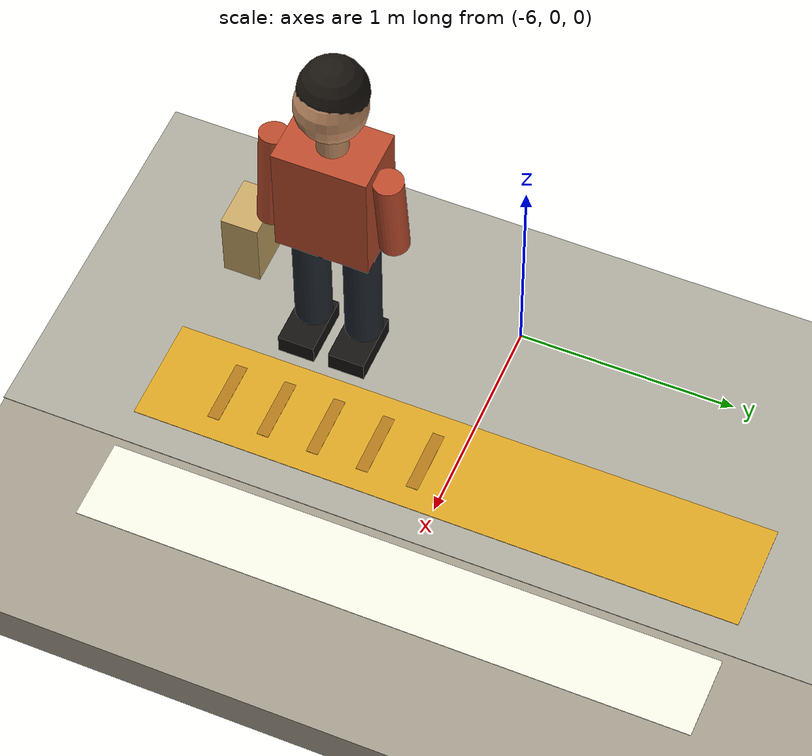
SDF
<sdf version="1.10">
 <world name="swan_market">
  <model name="ground">
   <static>true</static>
   <pose>15 0 -0.1 0 0 0</pose>
   <link name="body">
    <collision name="box_collision"><geometry><box><size>46 24 0.2</size></box></geometry></collision>
    <visual name="box_visual">
     <geometry><box><size>46 24 0.2</size></box></geometry>
     <material><ambient>0.64 0.61 0.55 1</ambient><diffuse>0.64 0.61 0.55 1</diffuse></material>
    </visual>
   </link>
  </model>
  <model name="entrance_sidewalk_west">
   <static>true</static>
   <pose>-6.4 0 0.014 0 0 0</pose>
   <link name="body">
    <visual name="box_visual">
     <geometry><box><size>3.2 16 0.004</size></box></geometry>
     <material><ambient>0.67 0.66 0.61 1</ambient><diffuse>0.67 0.66 0.61 1</diffuse></material>
    </visual>
   </link>
  </model>
  <model name="crosswalk_stripe_0">
   <static>true</static>
   <pose>-4.57 0 0.016 0 0 0</pose>
   <link name="body">
    <visual name="box_visual">
     <geometry><box><size>0.38 2.8 0.003</size></box></geometry>
     <material><ambient>0.95 0.95 0.89 1</ambient><diffuse>0.95 0.95 0.89 1</diffuse></material>
    </visual>
   </link>
  </model>
  <model name="crosswalk_tactile_0">
   <static>true</static>
   <pose>-5.2 0 0.019 0 0 0</pose>
   <link name="body">
    <visual name="box_visual">
     <geometry><box><size>0.5 2.8 0.003</size></box></geometry>
     <material><ambient>0.85 0.64 0.14 1</ambient><diffuse>0.85 0.64 0.14 1</diffuse></material>
    </visual>
   </link>
  </model>
  <model name="tactile_mark_0_1">
   <static>true</static>
   <pose>-5.2 -1.065 0.022 0 0 0</pose>
   <link name="body">
    <visual name="box_visual">
     <geometry><box><size>0.3 0.055 0.002</size></box></geometry>
     <material><ambient>0.69 0.47 0.1 1</ambient><diffuse>0.69 0.47 0.1 1</diffuse></material>
    </visual>
   </link>
  </model>
  <model name="tactile_mark_0_2">
   <static>true</static>
   <pose>-5.2 -0.83 0.022 0 0 0</pose>
   <link name="body">
    <visual name="box_visual">
     <geometry><box><size>0.3 0.055 0.002</size></box></geometry>
     <material><ambient>0.69 0.47 0.1 1</ambient><diffuse>0.69 0.47 0.1 1</diffuse></material>
    </visual>
   </link>
  </model>
  <model name="tactile_mark_0_3">
   <static>true</static>
   <pose>-5.2 -0.595 0.022 0 0 0</pose>
   <link name="body">
    <visual name="box_visual">
     <geometry><box><size>0.3 0.055 0.002</size></box></geometry>
     <material><ambient>0.69 0.47 0.1 1</ambient><diffuse>0.69 0.47 0.1 1</diffuse></material>
    </visual>
   </link>
  </model>
  <model name="tactile_mark_0_4">
   <static>true</static>
   <pose>-5.2 -0.36 0.022 0 0 0</pose>
   <link name="body">
    <visual name="box_visual">
     <geometry><box><size>0.3 0.055 0.002</size></box></geometry>
     <material><ambient>0.69 0.47 0.1 1</ambient><diffuse>0.69 0.47 0.1 1</diffuse></material>
    </visual>
   </link>
  </model>
  <model name="tactile_mark_0_5">
   <static>true</static>
   <pose>-5.2 -0.125 0.022 0 0 0</pose>
   <link name="body">
    <visual name="box_visual">
     <geometry><box><size>0.3 0.055 0.002</size></box></geometry>
     <material><ambient>0.69 0.47 0.1 1</ambient><diffuse>0.69 0.47 0.1 1</diffuse></material>
    </visual>
   </link>
  </model>
  <model name="crossing_pedestrian_1">
   <static>true</static>
   <pose>-5.7 -0.75 0 0 0 0</pose>
   <link name="body">
    <collision name="leg_-1_collision">
     <pose>0 -0.12 0.4 0 0 0</pose>
     <geometry><cylinder><radius>0.085</radius><length>0.68</length></cylinder></geometry>
    </collision>
    <visual name="leg_-1_visual">
     <pose>0 -0.12 0.4 0 0 0</pose>
     <geometry><cylinder><radius>0.085</radius><length>0.68</length></cylinder></geometry>
     <material><ambient>0.12 0.15 0.18 1</ambient><diffuse>0.12 0.15 0.18 1</diffuse></material>
    </visual>
    <collision name="shoe_-1_collision">
     <pose>0.06 -0.12 0.055 0 0 0</pose>
     <geometry><box><size>0.28 0.17 0.11</size></box></geometry>
    </collision>
    <visual name="shoe_-1_visual">
     <pose>0.06 -0.12 0.055 0 0 0</pose>
     <geometry><box><size>0.28 0.17 0.11</size></box></geometry>
     <material><ambient>0.08 0.07 0.06 1</ambient><diffuse>0.08 0.07 0.06 1</diffuse></material>
    </visual>
    <collision name="arm_-1_collision">
     <pose>0.02 -0.27 1.02 0 -0.12 0</pose>
     <geometry><cylinder><radius>0.068</radius><length>0.48</length></cylinder></geometry>
    </collision>
    <visual name="arm_-1_visual">
     <pose>0.02 -0.27 1.02 0 -0.12 0</pose>
     <geometry><cylinder><radius>0.068</radius><length>0.48</length></cylinder></geometry>
     <material><ambient>0.73 0.29 0.17 1</ambient><diffuse>0.73 0.29 0.17 1</diffuse></material>
    </visual>
    <collision name="leg_1_collision">
     <pose>0 0.12 0.4 0 0 0</pose>
     <geometry><cylinder><radius>0.085</radius><length>0.68</length></cylinder></geometry>
    </collision>
    <visual name="leg_1_visual">
     <pose>0 0.12 0.4 0 0 0</pose>
     <geometry><cylinder><radius>0.085</radius><length>0.68</length></cylinder></geometry>
     <material><ambient>0.12 0.15 0.18 1</ambient><diffuse>0.12 0.15 0.18 1</diffuse></material>
    </visual>
    <collision name="shoe_1_collision">
     <pose>0.06 0.12 0.055 0 0 0</pose>
     <geometry><box><size>0.28 0.17 0.11</size></box></geometry>
    </collision>
    <visual name="shoe_1_visual">
     <pose>0.06 0.12 0.055 0 0 0</pose>
     <geometry><box><size>0.28 0.17 0.11</size></box></geometry>
     <material><ambient>0.08 0.07 0.06 1</ambient><diffuse>0.08 0.07 0.06 1</diffuse></material>
    </visual>
    <collision name="arm_1_collision">
     <pose>0.02 0.27 1.02 0 0.12 0</pose>
     <geometry><cylinder><radius>0.068</radius><length>0.48</length></cylinder></geometry>
    </collision>
    <visual name="arm_1_visual">
     <pose>0.02 0.27 1.02 0 0.12 0</pose>
     <geometry><cylinder><radius>0.068</radius><length>0.48</length></cylinder></geometry>
     <material><ambient>0.73 0.29 0.17 1</ambient><diffuse>0.73 0.29 0.17 1</diffuse></material>
    </visual>
    <collision name="torso_collision">
     <pose>0 0 1.02 0 0 0</pose>
     <geometry><box><size>0.3 0.43 0.58</size></box></geometry>
    </collision>
    <visual name="torso_visual">
     <pose>0 0 1.02 0 0 0</pose>
     <geometry><box><size>0.3 0.43 0.58</size></box></geometry>
     <material><ambient>0.73 0.29 0.17 1</ambient><diffuse>0.73 0.29 0.17 1</diffuse></material>
    </visual>
    <visual name="neck_visual">
     <pose>0 0 1.37 0 0 0</pose>
     <geometry><cylinder><radius>0.07</radius><length>0.13</length></cylinder></geometry>
     <material><ambient>0.77 0.56 0.4 1</ambient><diffuse>0.77 0.56 0.4 1</diffuse></material>
    </visual>
    <collision name="head_collision">
     <pose>0 0 1.57 0 0 0</pose>
     <geometry><sphere><radius>0.16</radius></sphere></geometry>
    </collision>
    <visual name="head_visual">
     <pose>0 0 1.57 0 0 0</pose>
     <geometry><sphere><radius>0.16</radius></sphere></geometry>
     <material><ambient>0.77 0.56 0.4 1</ambient><diffuse>0.77 0.56 0.4 1</diffuse></material>
    </visual>
    <visual name="hair_visual">
     <pose>-0.025 0 1.63 0 0 0</pose>
     <geometry><sphere><radius>0.155</radius></sphere></geometry>
     <material><ambient>0.1 0.08 0.06 1</ambient><diffuse>0.1 0.08 0.06 1</diffuse></material>
    </visual>
    <collision name="shopping_bag_collision">
     <pose>0.04 -0.38 0.6 0 0 0</pose>
     <geometry><box><size>0.24 0.17 0.33</size></box></geometry>
    </collision>
    <visual name="shopping_bag_visual">
     <pose>0.04 -0.38 0.6 0 0 0</pose>
     <geometry><box><size>0.24 0.17 0.33</size></box></geometry>
     <material><ambient>0.78 0.65 0.39 1</ambient><diffuse>0.78 0.65 0.39 1</diffuse></material>
    </visual>
   </link>
  </model>
 </world>
</sdf>
